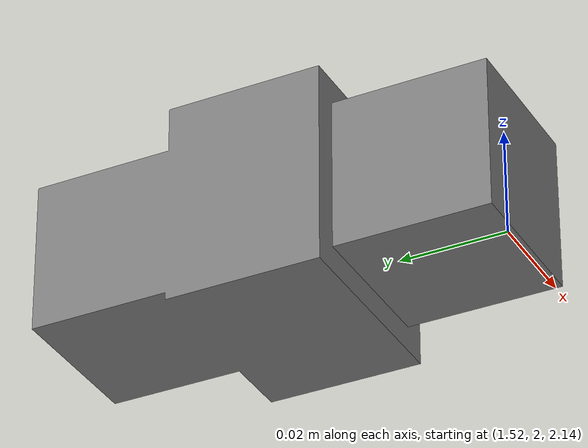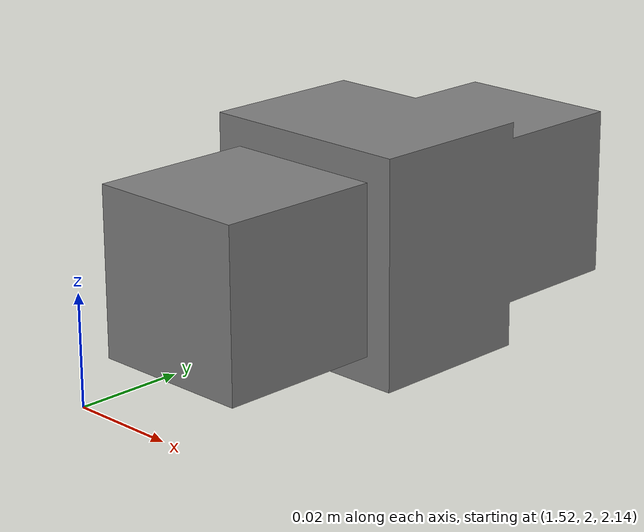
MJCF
<mujoco model="Ecke-2">
  <asset>
    <mesh
      file="../../../../../assets/cranfield_assembly_benchmark/assets/Ecke-2/Ecke-2.obj"
      scale="0.001 0.001 0.001">
      <plugin instance="sdf" />
    </mesh>
  </asset>
  <worldbody>
    <body name="Ecke-2" pos="2 2 2">
      <freejoint />
      <geom type="mesh" mesh="Ecke-2" size="0.01">
        <plugin instance="sdf" />
      </geom>
    </body>
  </worldbody>
</mujoco>
